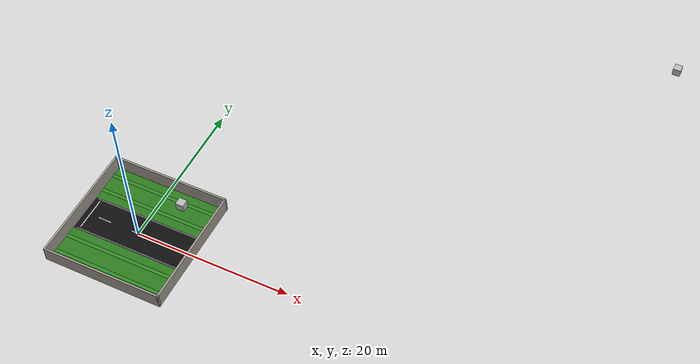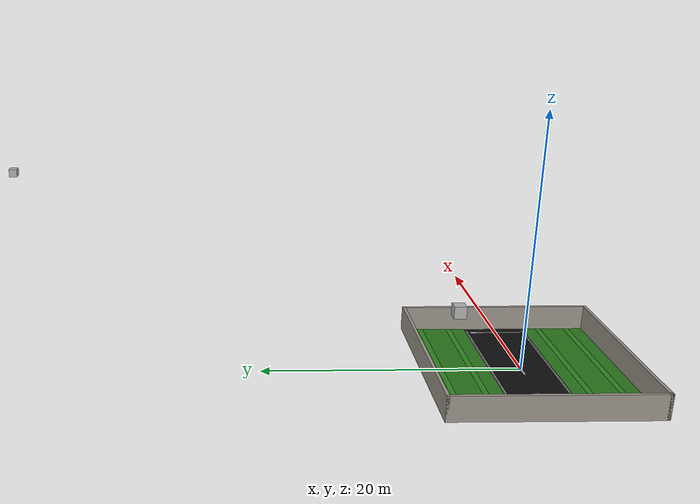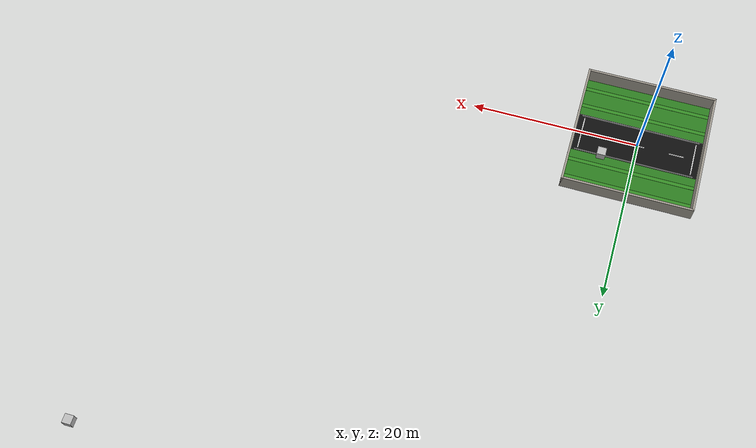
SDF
<?xml version="1.0" ?>
<sdf version="1.9">
  <world name="Simple_15m_Rover_Bird_Runway">
    <!-- Gazebo Sim / Harmonic systems. ROS topics can be exposed through
         ros_gz_bridge; the Gazebo Classic libgazebo_ros_state plugin from the
         source world cannot be loaded by gz-sim. -->
    <plugin filename="gz-sim-physics-system"
      name="gz::sim::systems::Physics"/>
    <plugin filename="gz-sim-user-commands-system"
      name="gz::sim::systems::UserCommands"/>
    <plugin filename="gz-sim-scene-broadcaster-system"
      name="gz::sim::systems::SceneBroadcaster"/>

    <gravity>0 0 -9.8</gravity>

    <light name="sun" type="directional">
      <cast_shadows>true</cast_shadows>
      <pose>0 0 10 0 0 0</pose>
      <diffuse>0.8 0.8 0.8 1</diffuse>
      <specular>0.2 0.2 0.2 1</specular>
      <attenuation>
        <range>1000</range>
        <constant>0.9</constant>
        <linear>0.01</linear>
        <quadratic>0.001</quadratic>
      </attenuation>
      <direction>-0.5 0.1 -0.9</direction>
    </light>

    <include>
      <uri>model://bird</uri>
      <name>bird_1</name>
      <pose>4.0 4.0 3.2 0 0 0</pose>
    </include>

    <include>
      <uri>model://bird</uri>
      <name>bird_2</name>
      <pose>50.0 50.0 3.2 0 0 0</pose>
    </include>

    <include>
      <uri>model://bird</uri>
      <name>bird_3</name>
      <pose>50.0 50.0 3.2 0 0 0</pose>
    </include>

    <include>
      <uri>model://bird</uri>
      <name>bird_4</name>
      <pose>50.0 50.0 3.2 0 0 0</pose>
    </include>

    <include>
      <uri>model://bird</uri>
      <name>bird_5</name>
      <pose>50.0 50.0 3.2 0 0 0</pose>
    </include>

    <physics name="1ms" type="ignored">
      <max_step_size>0.001</max_step_size>
      <real_time_factor>1.0</real_time_factor>
      <real_time_update_rate>1000</real_time_update_rate>
    </physics>

    <scene>
      <ambient>0.65 0.65 0.65 1</ambient>
      <background>0.68 0.83 1.0 1</background>
      <shadows>true</shadows>
    </scene>

    <model name="map_floor">
      <static>true</static>
      <link name="link">
        <collision name="floor_collision">
          <pose>0 0 -0.01 0 0 0</pose>
          <geometry>
            <box>
              <size>15 15 0.02</size>
            </box>
          </geometry>
          <surface>
            <friction>
              <ode>
                <mu>1.2</mu>
                <mu2>1.2</mu2>
              </ode>
            </friction>
            <contact>
              <ode>
                <kp>1000000</kp>
                <kd>1</kd>
                <max_vel>0.1</max_vel>
                <min_depth>0.001</min_depth>
              </ode>
            </contact>
          </surface>
        </collision>

        <visual name="grass_south">
          <pose>0 -5 0.001 0 0 0</pose>
          <cast_shadows>false</cast_shadows>
          <geometry>
            <box>
              <size>15 5 0.002</size>
            </box>
          </geometry>
          <material>
            <ambient>0.10 0.34 0.08 1</ambient>
            <diffuse>0.17 0.48 0.12 1</diffuse>
            <specular>0.01 0.01 0.01 1</specular>
          </material>
        </visual>

        <visual name="grass_north">
          <pose>0 5 0.001 0 0 0</pose>
          <cast_shadows>false</cast_shadows>
          <geometry>
            <box>
              <size>15 5 0.002</size>
            </box>
          </geometry>
          <material>
            <ambient>0.10 0.34 0.08 1</ambient>
            <diffuse>0.17 0.48 0.12 1</diffuse>
            <specular>0.01 0.01 0.01 1</specular>
          </material>
        </visual>

        <visual name="grass_south_mow_1">
          <pose>0 -6.2 0.003 0 0 0</pose>
          <cast_shadows>false</cast_shadows>
          <geometry>
            <box>
              <size>15 0.45 0.002</size>
            </box>
          </geometry>
          <material>
            <ambient>0.12 0.39 0.09 1</ambient>
            <diffuse>0.20 0.54 0.14 1</diffuse>
          </material>
        </visual>

        <visual name="grass_south_mow_2">
          <pose>0 -3.8 0.003 0 0 0</pose>
          <cast_shadows>false</cast_shadows>
          <geometry>
            <box>
              <size>15 0.45 0.002</size>
            </box>
          </geometry>
          <material>
            <ambient>0.12 0.39 0.09 1</ambient>
            <diffuse>0.20 0.54 0.14 1</diffuse>
          </material>
        </visual>

        <visual name="grass_north_mow_1">
          <pose>0 3.8 0.003 0 0 0</pose>
          <cast_shadows>false</cast_shadows>
          <geometry>
            <box>
              <size>15 0.45 0.002</size>
            </box>
          </geometry>
          <material>
            <ambient>0.12 0.39 0.09 1</ambient>
            <diffuse>0.20 0.54 0.14 1</diffuse>
          </material>
        </visual>

        <visual name="grass_north_mow_2">
          <pose>0 6.2 0.003 0 0 0</pose>
          <cast_shadows>false</cast_shadows>
          <geometry>
            <box>
              <size>15 0.45 0.002</size>
            </box>
          </geometry>
          <material>
            <ambient>0.12 0.39 0.09 1</ambient>
            <diffuse>0.20 0.54 0.14 1</diffuse>
          </material>
        </visual>

        <visual name="runway_asphalt">
          <pose>0 0 0.004 0 0 0</pose>
          <cast_shadows>false</cast_shadows>
          <geometry>
            <box>
              <size>15 5 0.004</size>
            </box>
          </geometry>
          <material>
            <ambient>0.035 0.035 0.035 1</ambient>
            <diffuse>0.055 0.055 0.055 1</diffuse>
            <specular>0 0 0 1</specular>
          </material>
        </visual>

        <visual name="runway_edge_north">
          <pose>0 2.35 0.008 0 0 0</pose>
          <cast_shadows>false</cast_shadows>
          <geometry>
            <box>
              <size>14.2 0.08 0.004</size>
            </box>
          </geometry>
          <material>
            <ambient>1 1 1 1</ambient>
            <diffuse>1 1 1 1</diffuse>
          </material>
        </visual>

        <visual name="runway_edge_south">
          <pose>0 -2.35 0.008 0 0 0</pose>
          <cast_shadows>false</cast_shadows>
          <geometry>
            <box>
              <size>14.2 0.08 0.004</size>
            </box>
          </geometry>
          <material>
            <ambient>1 1 1 1</ambient>
            <diffuse>1 1 1 1</diffuse>
          </material>
        </visual>

        <visual name="runway_center_dash_1">
          <pose>-4.7 0 0.010 0 0 0</pose>
          <cast_shadows>false</cast_shadows>
          <geometry>
            <box>
              <size>1.8 0.12 0.004</size>
            </box>
          </geometry>
          <material>
            <ambient>1 1 1 1</ambient>
            <diffuse>1 1 1 1</diffuse>
          </material>
        </visual>

        <visual name="runway_center_dash_2">
          <pose>0 0 0.010 0 0 0</pose>
          <cast_shadows>false</cast_shadows>
          <geometry>
            <box>
              <size>1.8 0.12 0.004</size>
            </box>
          </geometry>
          <material>
            <ambient>1 1 1 1</ambient>
            <diffuse>1 1 1 1</diffuse>
          </material>
        </visual>

        <visual name="runway_center_dash_3">
          <pose>4.7 0 0.010 0 0 0</pose>
          <cast_shadows>false</cast_shadows>
          <geometry>
            <box>
              <size>1.8 0.12 0.004</size>
            </box>
          </geometry>
          <material>
            <ambient>1 1 1 1</ambient>
            <diffuse>1 1 1 1</diffuse>
          </material>
        </visual>

        <visual name="runway_threshold_west">
          <pose>-6.75 0 0.010 0 0 0</pose>
          <cast_shadows>false</cast_shadows>
          <geometry>
            <box>
              <size>0.12 4.2 0.004</size>
            </box>
          </geometry>
          <material>
            <ambient>1 1 1 1</ambient>
            <diffuse>1 1 1 1</diffuse>
          </material>
        </visual>

        <visual name="runway_threshold_east">
          <pose>6.75 0 0.010 0 0 0</pose>
          <cast_shadows>false</cast_shadows>
          <geometry>
            <box>
              <size>0.12 4.2 0.004</size>
            </box>
          </geometry>
          <material>
            <ambient>1 1 1 1</ambient>
            <diffuse>1 1 1 1</diffuse>
          </material>
        </visual>
      </link>
    </model>

    <model name="wall_north">
      <static>true</static>
      <pose>0 7.625 1.0 0 0 0</pose>
      <link name="link">
        <collision name="collision">
          <geometry>
            <box>
              <size>15.5 0.25 2</size>
            </box>
          </geometry>
        </collision>
        <visual name="visual">
          <geometry>
            <box>
              <size>15.5 0.25 2</size>
            </box>
          </geometry>
          <material>
            <ambient>0.50 0.49 0.46 1</ambient>
            <diffuse>0.62 0.60 0.56 1</diffuse>
          </material>
        </visual>
      </link>
    </model>

    <model name="wall_south">
      <static>true</static>
      <pose>0 -7.625 1.0 0 0 0</pose>
      <link name="link">
        <collision name="collision">
          <geometry>
            <box>
              <size>15.5 0.25 2</size>
            </box>
          </geometry>
        </collision>
        <visual name="visual">
          <geometry>
            <box>
              <size>15.5 0.25 2</size>
            </box>
          </geometry>
          <material>
            <ambient>0.50 0.49 0.46 1</ambient>
            <diffuse>0.62 0.60 0.56 1</diffuse>
          </material>
        </visual>
      </link>
    </model>

    <model name="wall_east">
      <static>true</static>
      <pose>7.625 0 1.0 0 0 0</pose>
      <link name="link">
        <collision name="collision">
          <geometry>
            <box>
              <size>0.25 15.5 2</size>
            </box>
          </geometry>
        </collision>
        <visual name="visual">
          <geometry>
            <box>
              <size>0.25 15.5 2</size>
            </box>
          </geometry>
          <material>
            <ambient>0.50 0.49 0.46 1</ambient>
            <diffuse>0.62 0.60 0.56 1</diffuse>
          </material>
        </visual>
      </link>
    </model>

    <model name="wall_west">
      <static>true</static>
      <pose>-7.625 0 1.0 0 0 0</pose>
      <link name="link">
        <collision name="collision">
          <geometry>
            <box>
              <size>0.25 15.5 2</size>
            </box>
          </geometry>
        </collision>
        <visual name="visual">
          <geometry>
            <box>
              <size>0.25 15.5 2</size>
            </box>
          </geometry>
          <material>
            <ambient>0.50 0.49 0.46 1</ambient>
            <diffuse>0.62 0.60 0.56 1</diffuse>
          </material>
        </visual>
      </link>
    </model>
  </world>
</sdf>

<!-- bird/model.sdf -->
<sdf version="1.9">
  <model name="bird_combined">
    <static>false</static>
    <pose>0 0 0 0 0 0</pose>

    <link name="body">
      <gravity>false</gravity>
      <kinematic>true</kinematic>

      <inertial>
        <mass>0.3</mass>
        <inertia>
          <ixx>0.05</ixx>
          <iyy>0.05</iyy>
          <izz>0.05</izz>
        </inertia>
      </inertial>

      <collision name="collision">
        <geometry>
          <box>
            <size>1 1 1</size>
          </box>
        </geometry>
      </collision>

      <visual name="visual">
        <geometry>
          <mesh>
            <uri>model://bird/meshes/bird.dae</uri>
            <scale>1 1 1</scale>
          </mesh>
        </geometry>
      </visual>

    </link>
  </model>
</sdf>
